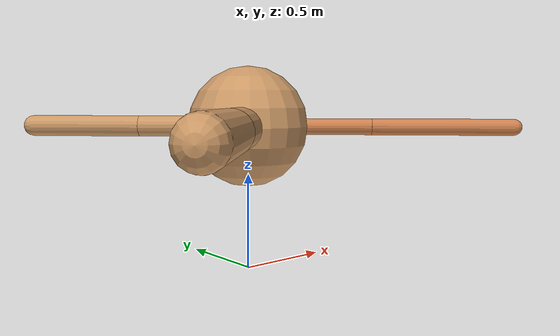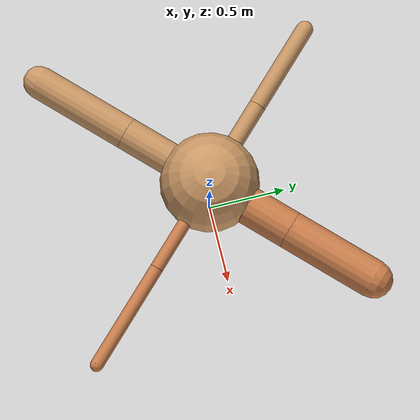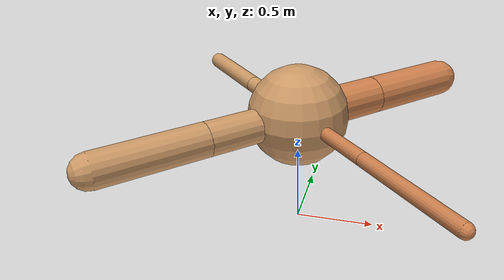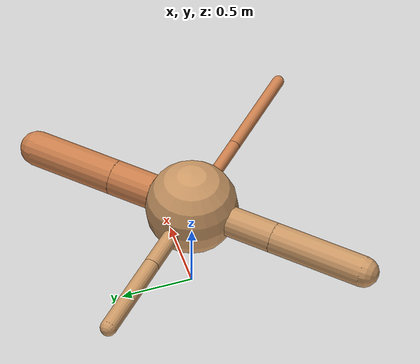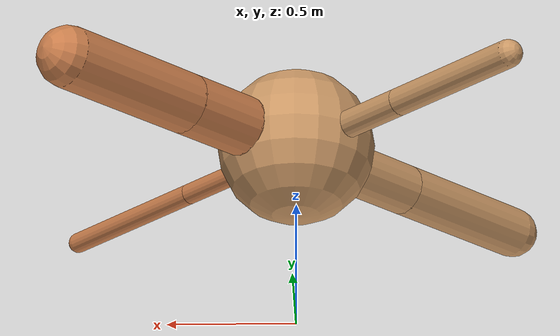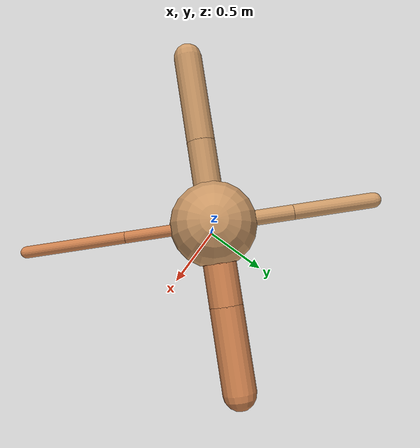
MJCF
<?xml version="1.0" ?>
<mujoco model="ant">

	<compiler angle="degree" coordinate="local" inertiafromgeom="true"/>

	<option integrator="RK4" timestep="0.01"/>

	<custom>

		<numeric data="0.0 0.0 0.55 1.0 0.0 0.0 0.0 0.0 1.0 0.0 -1.0 0.0 -1.0 0.0 1.0" name="init_qpos"/>

	</custom>

	<default>

		<joint armature="1" damping="1" limited="true"/>

		<geom conaffinity="0" condim="3" density="5.0" friction="1.5 0.1 0.1" margin="0.01" rgba="0.8 0.6 0.4 1"/>

	</default>

	<worldbody>

		<body name="torso" pos="0 0 0.75">

			<geom name="torso_geom" pos="0 0 0" size="0.3104564993180767" type="sphere"/>

			<!--joint armature="0" damping="0" limited="false" margin="0.01" name="root" pos="0 0 0" type="free"/-->

			<body name="front_left_leg" pos="0 0 0">

				<geom fromto="0 0 0 0.2 0.2 0" name="aux_1_geom" size="0.1197264256436909" type="capsule" rgba=".8 .5 .3 1"/>

				<body name="aux_1" pos="0.2 0.2 0">

					<joint axis="0 0 1" name="hip_1" pos="0.0 0.0 0.0" range="-40 40" type="hinge"/>

					<geom fromto="0 0 0 0.2101389753445685 0.2101389753445685 0" name="left_leg_geom" size="0.1197264256436909" type="capsule" rgba=".8 .5 .3 1"/>

					<body pos="0.2101389753445685 0.2101389753445685 0" name="front_left_foot">

						<joint axis="-1 1 0" name="ankle_1" pos="0.0 0.0 0.0" range="30 100" type="hinge"/>

						<geom fromto="0 0 0 0.420277950689137 0.420277950689137 0" name="left_ankle_geom" size="0.1197264256436909" type="capsule" rgba=".8 .5 .3 1"/>

					</body>

				</body>

			</body>

			<body name="front_right_leg" pos="0 0 0">

				<geom fromto="0 0 0 -0.2 0.2 0" name="aux_2_geom" size="0.05466259758744009" type="capsule"/>

				<body name="aux_2" pos="-0.2 0.2 0">

					<joint axis="0 0 1" name="hip_2" pos="0.0 0.0 0.0" range="-40 40" type="hinge"/>

					<geom fromto="0 0 0 -0.20428058975399904 0.20428058975399904 0" name="right_leg_geom" size="0.05466259758744009" type="capsule"/>

					<body pos="-0.20428058975399904 0.20428058975399904 0" name="front_right_foot">

						<joint axis="1 1 0" name="ankle_2" pos="0.0 0.0 0.0" range="-100 -30" type="hinge"/>

						<geom fromto="0 0 0 -0.4085611795079981 0.4085611795079981 0" name="right_ankle_geom" size="0.05466259758744009" type="capsule"/>

					</body>

				</body>

			</body>

			<body name="left_back_leg" pos="0 0 0">

				<geom fromto="0 0 0 -0.2 -0.2 0" name="aux_3_geom" size="0.10243680494504111" type="capsule"/>

				<body name="aux_3" pos="-0.2 -0.2 0">

					<joint axis="0 0 1" name="hip_3" pos="0.0 0.0 0.0" range="-40 40" type="hinge"/>

					<geom fromto="0 0 0 -0.22575108842087524 -0.22575108842087524 0" name="back_leg_geom" size="0.10243680494504111" type="capsule"/>

					<body pos="-0.22575108842087524 -0.22575108842087524 0" name="left_back_foot">

						<joint axis="-1 1 0" name="ankle_3" pos="0.0 0.0 0.0" range="-100 -30" type="hinge"/>

						<geom fromto="0 0 0 -0.4515021768417505 -0.4515021768417505 0" name="third_ankle_geom" size="0.10243680494504111" type="capsule"/>

					</body>

				</body>

			</body>

			<body name="right_back_leg" pos="0 0 0">

				<geom fromto="0 0 0 0.2 -0.2 0" name="aux_4_geom" size="0.04164537416034289" type="capsule" rgba=".8 .5 .3 1"/>

				<body name="aux_4" pos="0.2 -0.2 0">

					<joint axis="0 0 1" name="hip_4" pos="0.0 0.0 0.0" range="-40 40" type="hinge"/>

					<geom fromto="0 0 0 0.24645767709378028 -0.24645767709378028 0" name="rightback_leg_geom" size="0.04164537416034289" type="capsule" rgba=".8 .5 .3 1"/>

					<body pos="0.24645767709378028 -0.24645767709378028 0" name="right_back_foot">

						<joint axis="1 1 0" name="ankle_4" pos="0.0 0.0 0.0" range="30 100" type="hinge"/>

						<geom fromto="0 0 0 0.49291535418756055 -0.49291535418756055 0" name="fourth_ankle_geom" size="0.04164537416034289" type="capsule" rgba=".8 .5 .3 1"/>

					</body>

				</body>

			</body>

		</body>

	</worldbody>

	<actuator>

		<motor ctrllimited="true" ctrlrange="-1.0 1.0" joint="hip_4" gear="150"/>

		<motor ctrllimited="true" ctrlrange="-1.0 1.0" joint="ankle_4" gear="150"/>

		<motor ctrllimited="true" ctrlrange="-1.0 1.0" joint="hip_1" gear="150"/>

		<motor ctrllimited="true" ctrlrange="-1.0 1.0" joint="ankle_1" gear="150"/>

		<motor ctrllimited="true" ctrlrange="-1.0 1.0" joint="hip_2" gear="150"/>

		<motor ctrllimited="true" ctrlrange="-1.0 1.0" joint="ankle_2" gear="150"/>

		<motor ctrllimited="true" ctrlrange="-1.0 1.0" joint="hip_3" gear="150"/>

		<motor ctrllimited="true" ctrlrange="-1.0 1.0" joint="ankle_3" gear="150"/>

	</actuator>

</mujoco>
